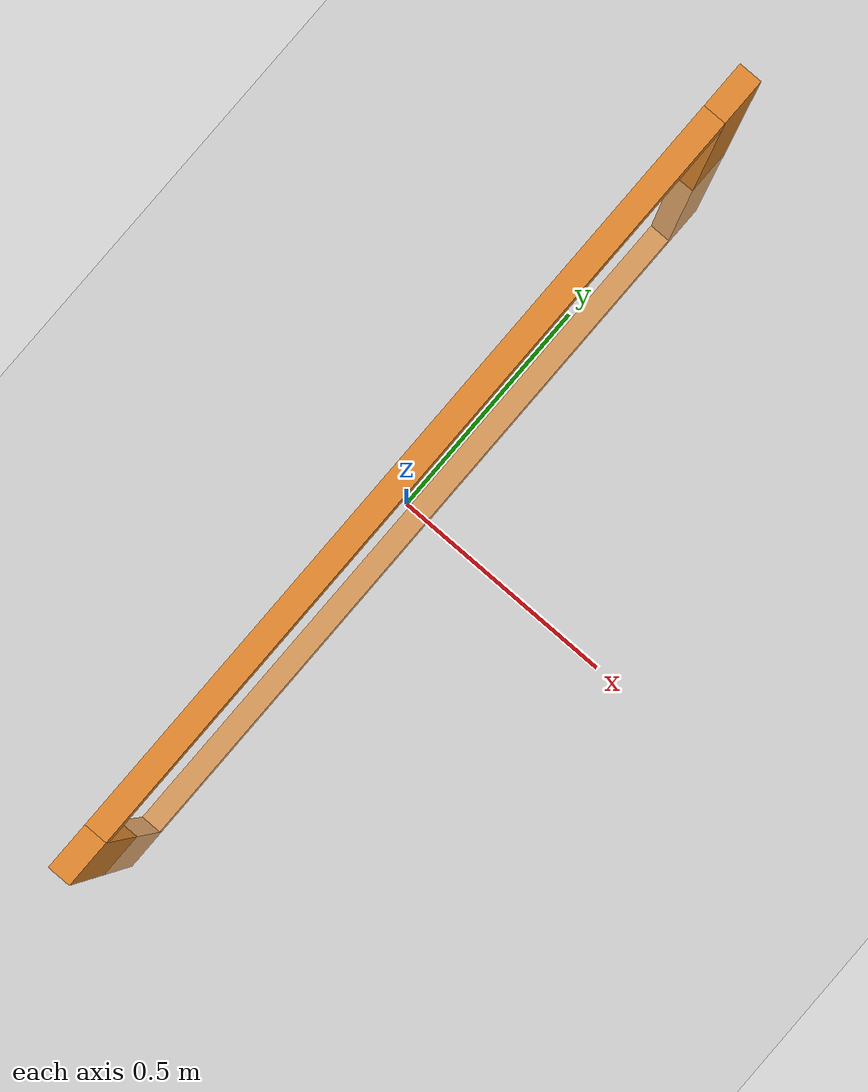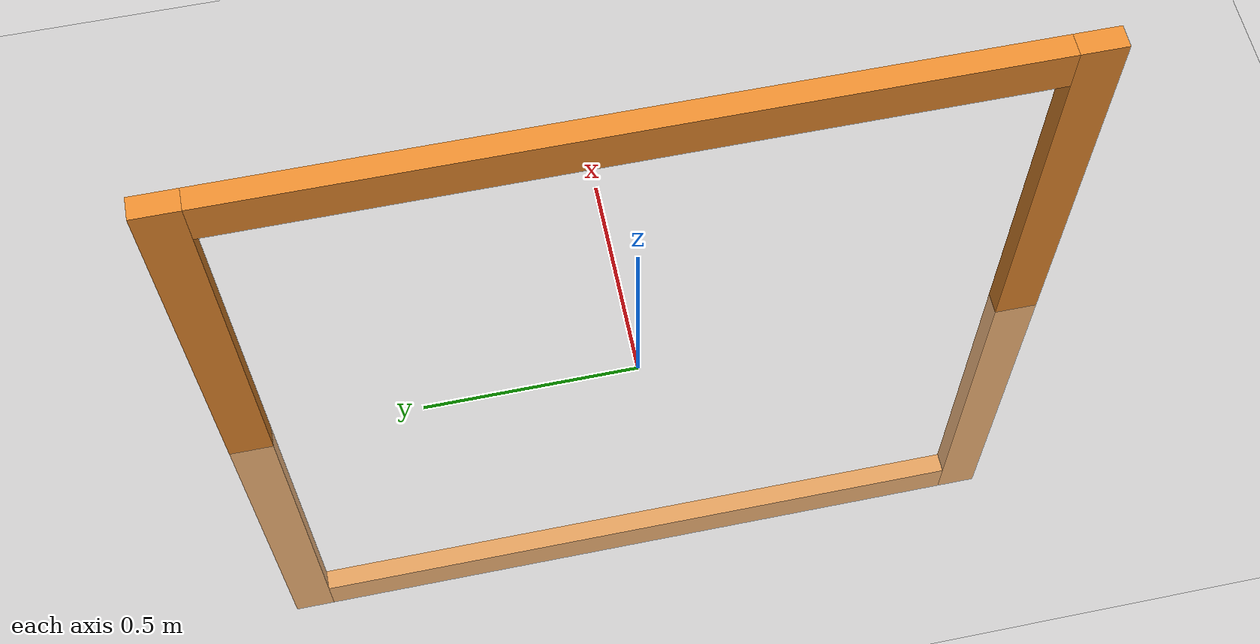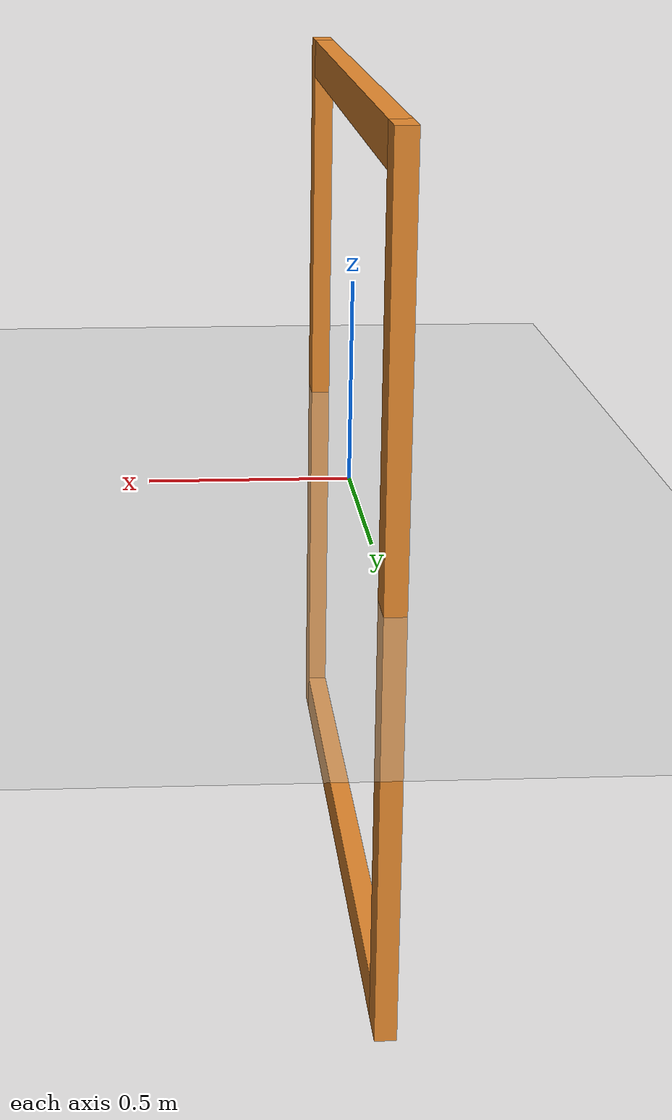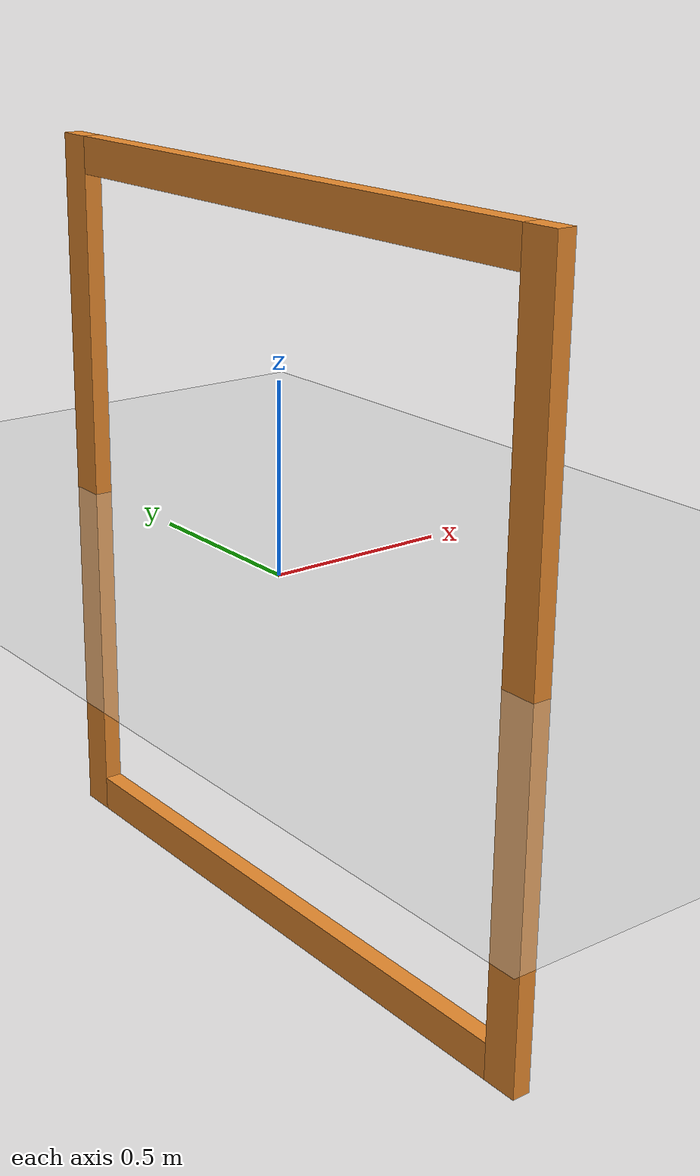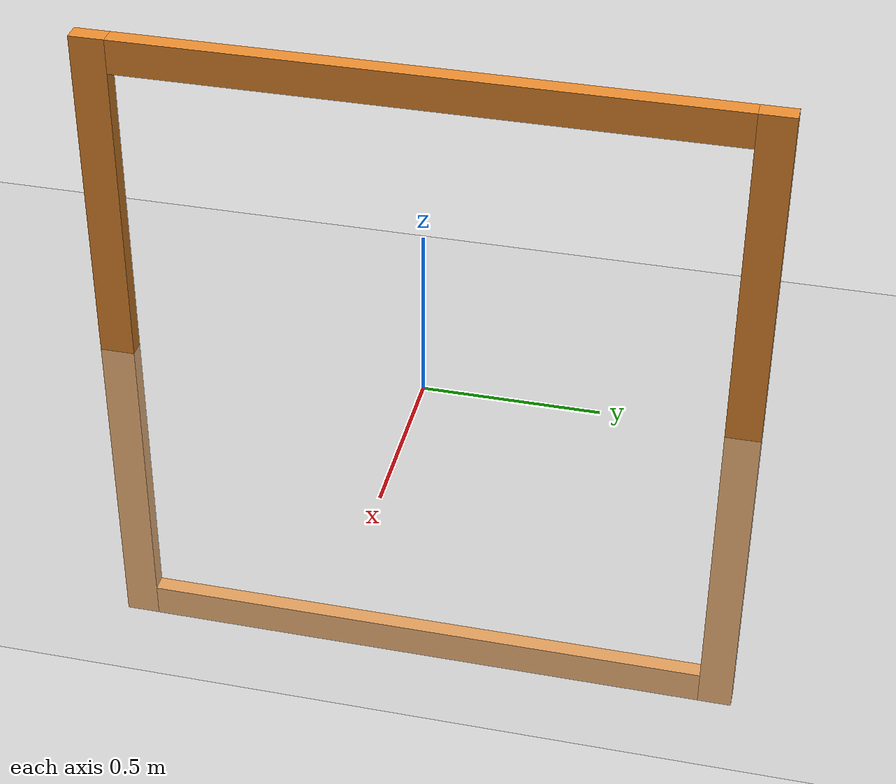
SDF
<sdf version="1.4">
 <world name="smart_drone_simple_world">
  <include><uri>model://ground_plane</uri></include>
  <include><uri>model://sun</uri></include>
  <model name="smart_drone_orange_gate5">
   <link name="left">
    <pose>0 -0.9 0 0 -0 0</pose>
    <inertial>
     <mass>1</mass>
     <inertia>
      <ixx>0.166667</ixx>
      <ixy>0</ixy>
      <ixz>0</ixz>
      <iyy>0.166667</iyy>
      <iyz>0</iyz>
      <izz>0.166667</izz>
     </inertia>
     <pose>0 -0.9 0 0 -0 0</pose>
    </inertial>
    <visual name="visual">
     <geometry><box><size>0.05 0.1 2</size></box></geometry>
     <material>
      <lighting>1</lighting>
      <script><uri>file://media/materials/scripts/gazebo.material</uri><name>Gazebo/Grey</name></script>
      <shader type="pixel"><normal_map>__default__</normal_map></shader>
      <ambient>0.9 0.54 0.18 1</ambient>
      <diffuse>0.9 0.54 0.18 1</diffuse>
      <specular>0.9 0.54 0.18 1</specular>
      <emissive>0 0 0 1</emissive>
     </material>
    </visual>
    <collision name="collision">
     <geometry><box><size>0.05 0.1 2</size></box></geometry>
     <surface>
      <friction>
       <ode><mu>1</mu><mu2>1</mu2><fdir1>0 0 0</fdir1><slip1>0</slip1><slip2>0</slip2></ode>
       <torsional>
        <coefficient>1</coefficient>
        <patch_radius>0</patch_radius>
        <surface_radius>0</surface_radius>
        <use_patch_radius>1</use_patch_radius>
        <ode><slip>0</slip></ode>
       </torsional>
      </friction>
      <bounce><restitution_coefficient>0</restitution_coefficient><threshold>1e+06</threshold></bounce>
      <contact>
       <collide_without_contact>0</collide_without_contact>
       <collide_without_contact_bitmask>1</collide_without_contact_bitmask>
       <collide_bitmask>1</collide_bitmask>
       <ode>
        <soft_cfm>0</soft_cfm>
        <soft_erp>0.2</soft_erp>
        <kp>1e+13</kp>
        <kd>1</kd>
        <max_vel>0.01</max_vel>
        <min_depth>0</min_depth>
       </ode>
       <bullet>
        <split_impulse>1</split_impulse>
        <split_impulse_penetration_threshold>-0.01</split_impulse_penetration_threshold>
        <soft_cfm>0</soft_cfm>
        <soft_erp>0.2</soft_erp>
        <kp>1e+13</kp>
        <kd>1</kd>
       </bullet>
      </contact>
     </surface>
    </collision>
   </link>
   <link name="top">
    <pose>0 0 0.95 0 -0 0</pose>
    <inertial>
     <mass>1</mass>
     <inertia>
      <ixx>0.166667</ixx>
      <ixy>0</ixy>
      <ixz>0</ixz>
      <iyy>0.166667</iyy>
      <iyz>0</iyz>
      <izz>0.166667</izz>
     </inertia>
     <pose>0 0 0.95 0 -0 0</pose>
    </inertial>
    <visual name="visual">
     <geometry><box><size>0.05 1.7 0.1</size></box></geometry>
     <material>
      <lighting>1</lighting>
      <script><uri>file://media/materials/scripts/gazebo.material</uri><name>Gazebo/Grey</name></script>
      <shader type="pixel"><normal_map>__default__</normal_map></shader>
      <ambient>0.9 0.54 0.18 1</ambient>
      <diffuse>0.9 0.54 0.18 1</diffuse>
      <specular>0.9 0.54 0.18 1</specular>
      <emissive>0 0 0 1</emissive>
     </material>
    </visual>
    <collision name="collision">
     <geometry><box><size>0.05 1.7 0.1</size></box></geometry>
     <surface>
      <friction>
       <ode><mu>1</mu><mu2>1</mu2><fdir1>0 0 0</fdir1><slip1>0</slip1><slip2>0</slip2></ode>
       <torsional>
        <coefficient>1</coefficient>
        <patch_radius>0</patch_radius>
        <surface_radius>0</surface_radius>
        <use_patch_radius>1</use_patch_radius>
        <ode><slip>0</slip></ode>
       </torsional>
      </friction>
      <bounce><restitution_coefficient>0</restitution_coefficient><threshold>1e+06</threshold></bounce>
      <contact>
       <collide_without_contact>0</collide_without_contact>
       <collide_without_contact_bitmask>1</collide_without_contact_bitmask>
       <collide_bitmask>1</collide_bitmask>
       <ode>
        <soft_cfm>0</soft_cfm>
        <soft_erp>0.2</soft_erp>
        <kp>1e+13</kp>
        <kd>1</kd>
        <max_vel>0.01</max_vel>
        <min_depth>0</min_depth>
       </ode>
       <bullet>
        <split_impulse>1</split_impulse>
        <split_impulse_penetration_threshold>-0.01</split_impulse_penetration_threshold>
        <soft_cfm>0</soft_cfm>
        <soft_erp>0.2</soft_erp>
        <kp>1e+13</kp>
        <kd>1</kd>
       </bullet>
      </contact>
     </surface>
    </collision>
   </link>
   <link name="bot">
    <pose>0 0 -0.95 0 -0 0</pose>
    <inertial>
     <mass>1</mass>
     <inertia>
      <ixx>0.166667</ixx>
      <ixy>0</ixy>
      <ixz>0</ixz>
      <iyy>0.166667</iyy>
      <iyz>0</iyz>
      <izz>0.166667</izz>
     </inertia>
     <pose>0 0 -0.95 0 -0 0</pose>
    </inertial>
    <visual name="visual">
     <geometry><box><size>0.05 1.7 0.1</size></box></geometry>
     <material>
      <lighting>1</lighting>
      <script><uri>file://media/materials/scripts/gazebo.material</uri><name>Gazebo/Grey</name></script>
      <shader type="pixel"><normal_map>__default__</normal_map></shader>
      <ambient>0.9 0.54 0.18 1</ambient>
      <diffuse>0.9 0.54 0.18 1</diffuse>
      <specular>0.9 0.54 0.18 1</specular>
      <emissive>0 0 0 1</emissive>
     </material>
    </visual>
    <collision name="collision">
     <geometry><box><size>0.05 1.7 0.1</size></box></geometry>
     <surface>
      <friction>
       <ode><mu>1</mu><mu2>1</mu2><fdir1>0 0 0</fdir1><slip1>0</slip1><slip2>0</slip2></ode>
       <torsional>
        <coefficient>1</coefficient>
        <patch_radius>0</patch_radius>
        <surface_radius>0</surface_radius>
        <use_patch_radius>1</use_patch_radius>
        <ode><slip>0</slip></ode>
       </torsional>
      </friction>
      <bounce><restitution_coefficient>0</restitution_coefficient><threshold>1e+06</threshold></bounce>
      <contact>
       <collide_without_contact>0</collide_without_contact>
       <collide_without_contact_bitmask>1</collide_without_contact_bitmask>
       <collide_bitmask>1</collide_bitmask>
       <ode>
        <soft_cfm>0</soft_cfm>
        <soft_erp>0.2</soft_erp>
        <kp>1e+13</kp>
        <kd>1</kd>
        <max_vel>0.01</max_vel>
        <min_depth>0</min_depth>
       </ode>
       <bullet>
        <split_impulse>1</split_impulse>
        <split_impulse_penetration_threshold>-0.01</split_impulse_penetration_threshold>
        <soft_cfm>0</soft_cfm>
        <soft_erp>0.2</soft_erp>
        <kp>1e+13</kp>
        <kd>1</kd>
       </bullet>
      </contact>
     </surface>
    </collision>
   </link>
   <link name="right">
    <pose>0 0.9 0 0 -0 0</pose>
    <inertial>
     <mass>1</mass>
     <inertia>
      <ixx>0.166667</ixx>
      <ixy>0</ixy>
      <ixz>0</ixz>
      <iyy>0.166667</iyy>
      <iyz>0</iyz>
      <izz>0.166667</izz>
     </inertia>
     <pose>0 0.9 0 0 -0 0</pose>
    </inertial>
    <visual name="visual">
     <geometry><box><size>0.05 0.1 2</size></box></geometry>
     <material>
      <lighting>1</lighting>
      <script><uri>file://media/materials/scripts/gazebo.material</uri><name>Gazebo/Grey</name></script>
      <shader type="pixel"><normal_map>__default__</normal_map></shader>
      <ambient>0.9 0.54 0.18 1</ambient>
      <diffuse>0.9 0.54 0.18 1</diffuse>
      <specular>0.9 0.54 0.18 1</specular>
      <emissive>0 0 0 1</emissive>
     </material>
    </visual>
    <collision name="collision">
     <geometry><box><size>0.05 0.1 2</size></box></geometry>
     <surface>
      <friction>
       <ode><mu>1</mu><mu2>1</mu2><fdir1>0 0 0</fdir1><slip1>0</slip1><slip2>0</slip2></ode>
       <torsional>
        <coefficient>1</coefficient>
        <patch_radius>0</patch_radius>
        <surface_radius>0</surface_radius>
        <use_patch_radius>1</use_patch_radius>
        <ode><slip>0</slip></ode>
       </torsional>
      </friction>
      <bounce><restitution_coefficient>0</restitution_coefficient><threshold>1e+06</threshold></bounce>
      <contact>
       <collide_without_contact>0</collide_without_contact>
       <collide_without_contact_bitmask>1</collide_without_contact_bitmask>
       <collide_bitmask>1</collide_bitmask>
       <ode>
        <soft_cfm>0</soft_cfm>
        <soft_erp>0.2</soft_erp>
        <kp>1e+13</kp>
        <kd>1</kd>
        <max_vel>0.01</max_vel>
        <min_depth>0</min_depth>
       </ode>
       <bullet>
        <split_impulse>1</split_impulse>
        <split_impulse_penetration_threshold>-0.01</split_impulse_penetration_threshold>
        <soft_cfm>0</soft_cfm>
        <soft_erp>0.2</soft_erp>
        <kp>1e+13</kp>
        <kd>1</kd>
       </bullet>
      </contact>
     </surface>
    </collision>
   </link>
   <static>1</static>
  </model>
 </world>
</sdf>
